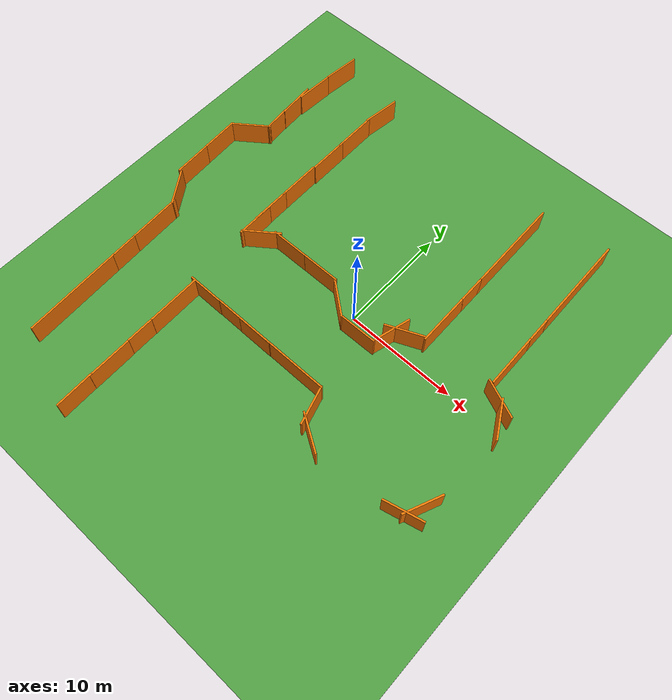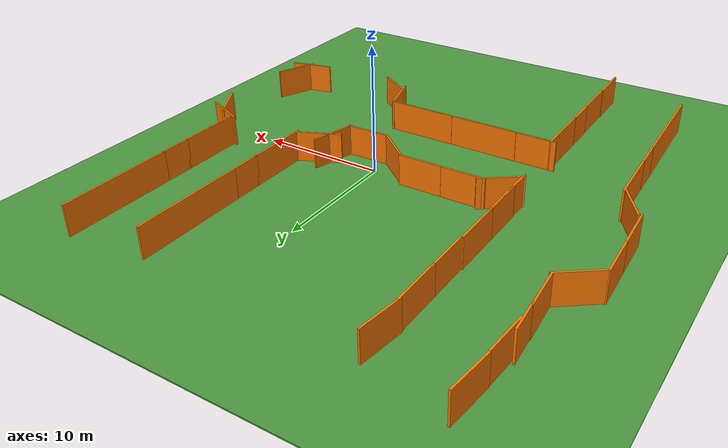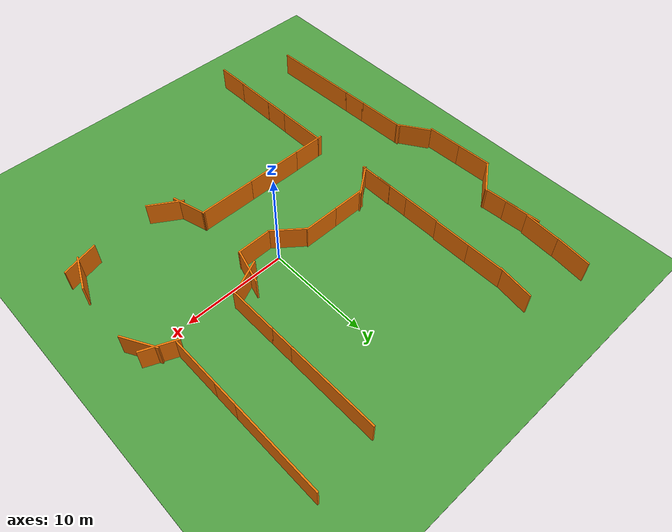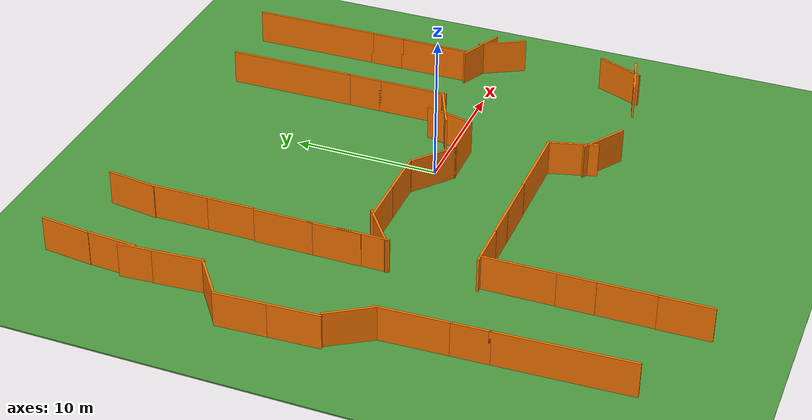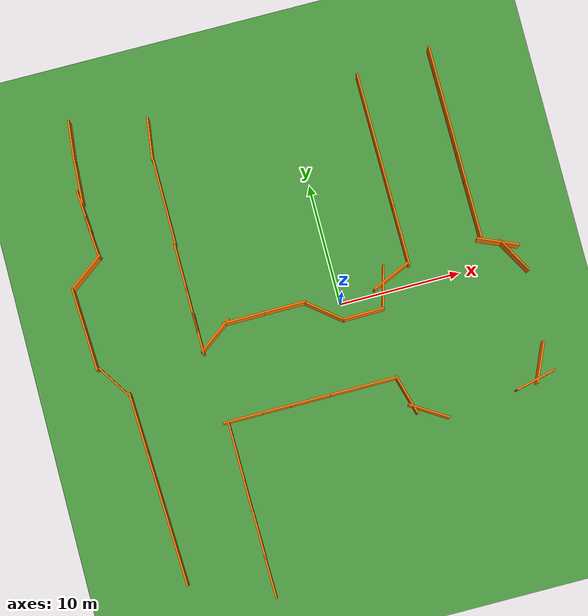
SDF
<sdf version="1.7">
 <world name="cimen_zemin_dunyasi">
  <model name="cimen_zemin">
   <static>1</static>
   <pose>-4.07306 2.53992 0 0 -0 0</pose>
   <link name="zemin_linki">
    <collision name="zemin_collision">
     <geometry><box><size>250 250 0.1</size></box></geometry>
     <surface><friction><ode><mu>1</mu><mu2>1</mu2></ode></friction></surface>
    </collision>
    <visual name="zemin_visual">
     <geometry><box><size>250 250 0.1</size></box></geometry>
     <material>
      <script><uri>file://media/materials/scripts/gazebo.material</uri><name>Gazebo/Grass</name></script>
     </material>
    </visual>
   </link>
  </model>
  <model name="barier3">
   <pose>8.34987 9.56962 0 0 0 -1.56341</pose>
   <link name="Wall_5">
    <collision name="Wall_5_Collision">
     <geometry><box><size>9 0.15 2.5</size></box></geometry>
     <pose>0 0 1.25 0 -0 0</pose>
    </collision>
    <visual name="Wall_5_Visual">
     <pose>0 0 1.25 0 -0 0</pose>
     <geometry><box><size>9 0.15 2.5</size></box></geometry>
     <material>
      <script><uri>file://media/materials/scripts/gazebo.material</uri><name>Gazebo/Grey</name></script>
      <ambient>0.996078 0.47451 0.0196078 1</ambient>
     </material>
     <meta><layer>0</layer></meta>
    </visual>
    <pose>-3.6 -2.29057 0 0 -0 0</pose>
   </link>
   <link name="Wall_7">
    <collision name="Wall_7_Collision">
     <geometry><box><size>2.5 0.15 2.5</size></box></geometry>
     <pose>0 0 1.25 0 -0 0</pose>
    </collision>
    <visual name="Wall_7_Visual">
     <pose>0 0 1.25 0 -0 0</pose>
     <geometry><box><size>2.5 0.15 2.5</size></box></geometry>
     <material>
      <script><uri>file://media/materials/scripts/gazebo.material</uri><name>Gazebo/Grey</name></script>
      <ambient>0.996078 0.47451 0.0196078 1</ambient>
     </material>
     <meta><layer>0</layer></meta>
    </visual>
    <pose>2 -2.29057 0 0 -0 0</pose>
   </link>
   <link name="Wall_9">
    <collision name="Wall_9_Collision">
     <geometry><box><size>5 0.15 2.5</size></box></geometry>
     <pose>0 0 1.25 0 -0 0</pose>
    </collision>
    <visual name="Wall_9_Visual">
     <pose>0 0 1.25 0 -0 0</pose>
     <geometry><box><size>5 0.15 2.5</size></box></geometry>
     <material>
      <script><uri>file://media/materials/scripts/gazebo.material</uri><name>Gazebo/Grey</name></script>
      <ambient>0.996078 0.47451 0.0196078 1</ambient>
     </material>
     <meta><layer>0</layer></meta>
    </visual>
    <pose>5.6 -2.29057 0 0 -0 0</pose>
   </link>
   <static>1</static>
  </model>
  <model name="barier3_clone_clone_clone_clone_0_clone_clone_clone_clone_0_clone">
   <link name="Wall_5">
    <pose>-0.876122 -2.31251 -0.000674 0 -0 0</pose>
    <inertial>
     <inertia><ixx>0</ixx><ixy>0</ixy><ixz>0</ixz><iyy>0</iyy><iyz>0</iyz><izz>0</izz></inertia>
     <mass>0</mass>
    </inertial>
    <visual name="Wall_5_Visual">
     <pose>0 0 1.25 0 -0 0</pose>
     <geometry><box><size>3.28339 0.15 2.5</size></box></geometry>
     <material>
      <script><uri>file://media/materials/scripts/gazebo.material</uri><name>Gazebo/Grey</name></script>
      <ambient>0.996078 0.47451 0.0196078 1</ambient>
      <shader type="pixel"/>
     </material>
     <meta><layer>0</layer></meta>
    </visual>
    <collision name="Wall_5_Collision">
     <pose>0 0 1.25 0 -0 0</pose>
     <geometry><box><size>3.28339 0.15 2.5</size></box></geometry>
     <surface>
      <friction>
       <ode><mu>1</mu><mu2>1</mu2><fdir1>0 0 0</fdir1><slip1>0</slip1><slip2>0</slip2></ode>
       <torsional>
        <coefficient>1</coefficient>
        <patch_radius>0</patch_radius>
        <surface_radius>0</surface_radius>
        <use_patch_radius>1</use_patch_radius>
        <ode><slip>0</slip></ode>
       </torsional>
      </friction>
      <bounce><restitution_coefficient>0</restitution_coefficient><threshold>1e+06</threshold></bounce>
      <contact>
       <collide_without_contact>0</collide_without_contact>
       <collide_without_contact_bitmask>1</collide_without_contact_bitmask>
       <collide_bitmask>1</collide_bitmask>
       <ode>
        <soft_cfm>0</soft_cfm>
        <soft_erp>0.2</soft_erp>
        <kp>1e+13</kp>
        <kd>1</kd>
        <max_vel>0.01</max_vel>
        <min_depth>0</min_depth>
       </ode>
       <bullet>
        <split_impulse>1</split_impulse>
        <split_impulse_penetration_threshold>-0.01</split_impulse_penetration_threshold>
        <soft_cfm>0</soft_cfm>
        <soft_erp>0.2</soft_erp>
        <kp>1e+13</kp>
        <kd>1</kd>
       </bullet>
      </contact>
     </surface>
    </collision>
   </link>
   <link name="Wall_9">
    <pose>3.5903 -2.29153 0.020971 0 -0 0</pose>
    <inertial>
     <inertia><ixx>0</ixx><ixy>0</ixy><ixz>0</ixz><iyy>0</iyy><iyz>0</iyz><izz>0</izz></inertia>
     <mass>0</mass>
    </inertial>
    <visual name="Wall_9_Visual">
     <pose>0 0 1.25 0 -0 0</pose>
     <geometry><box><size>5.65108 0.15 2.5</size></box></geometry>
     <material>
      <script><uri>file://media/materials/scripts/gazebo.material</uri><name>Gazebo/Grey</name></script>
      <ambient>0.996078 0.47451 0.0196078 1</ambient>
      <shader type="pixel"/>
     </material>
     <meta><layer>0</layer></meta>
    </visual>
    <collision name="Wall_9_Collision">
     <pose>0 0 1.25 0 -0 0</pose>
     <geometry><box><size>5.65108 0.15 2.5</size></box></geometry>
     <surface>
      <friction>
       <ode><mu>1</mu><mu2>1</mu2><fdir1>0 0 0</fdir1><slip1>0</slip1><slip2>0</slip2></ode>
       <torsional>
        <coefficient>1</coefficient>
        <patch_radius>0</patch_radius>
        <surface_radius>0</surface_radius>
        <use_patch_radius>1</use_patch_radius>
        <ode><slip>0</slip></ode>
       </torsional>
      </friction>
      <bounce><restitution_coefficient>0</restitution_coefficient><threshold>1e+06</threshold></bounce>
      <contact>
       <collide_without_contact>0</collide_without_contact>
       <collide_without_contact_bitmask>1</collide_without_contact_bitmask>
       <collide_bitmask>1</collide_bitmask>
       <ode>
        <soft_cfm>0</soft_cfm>
        <soft_erp>0.2</soft_erp>
        <kp>1e+13</kp>
        <kd>1</kd>
        <max_vel>0.01</max_vel>
        <min_depth>0</min_depth>
       </ode>
       <bullet>
        <split_impulse>1</split_impulse>
        <split_impulse_penetration_threshold>-0.01</split_impulse_penetration_threshold>
        <soft_cfm>0</soft_cfm>
        <soft_erp>0.2</soft_erp>
        <kp>1e+13</kp>
        <kd>1</kd>
       </bullet>
      </contact>
     </surface>
    </collision>
   </link>
   <static>1</static>
   <pose>-3.50952 -4.75677 0 0 -0 0</pose>
  </model>
  <model name="barier3_clone_clone_clone_clone_0_clone_clone_clone_clone_0_clone_0">
   <link name="Wall_5">
    <pose>-0.876122 -2.31251 -0.000674 0 -0 0</pose>
    <inertial>
     <inertia><ixx>0</ixx><ixy>0</ixy><ixz>0</ixz><iyy>0</iyy><iyz>0</iyz><izz>0</izz></inertia>
     <mass>0</mass>
    </inertial>
    <visual name="Wall_5_Visual">
     <pose>0 0 1.25 0 -0 0</pose>
     <geometry><box><size>3.28339 0.15 2.5</size></box></geometry>
     <material>
      <script><uri>file://media/materials/scripts/gazebo.material</uri><name>Gazebo/Grey</name></script>
      <ambient>0.996078 0.47451 0.0196078 1</ambient>
      <shader type="pixel"/>
     </material>
     <meta><layer>0</layer></meta>
    </visual>
    <collision name="Wall_5_Collision">
     <pose>0 0 1.25 0 -0 0</pose>
     <geometry><box><size>3.28339 0.15 2.5</size></box></geometry>
     <surface>
      <friction>
       <ode><mu>1</mu><mu2>1</mu2><fdir1>0 0 0</fdir1><slip1>0</slip1><slip2>0</slip2></ode>
       <torsional>
        <coefficient>1</coefficient>
        <patch_radius>0</patch_radius>
        <surface_radius>0</surface_radius>
        <use_patch_radius>1</use_patch_radius>
        <ode><slip>0</slip></ode>
       </torsional>
      </friction>
      <bounce><restitution_coefficient>0</restitution_coefficient><threshold>1e+06</threshold></bounce>
      <contact>
       <collide_without_contact>0</collide_without_contact>
       <collide_without_contact_bitmask>1</collide_without_contact_bitmask>
       <collide_bitmask>1</collide_bitmask>
       <ode>
        <soft_cfm>0</soft_cfm>
        <soft_erp>0.2</soft_erp>
        <kp>1e+13</kp>
        <kd>1</kd>
        <max_vel>0.01</max_vel>
        <min_depth>0</min_depth>
       </ode>
       <bullet>
        <split_impulse>1</split_impulse>
        <split_impulse_penetration_threshold>-0.01</split_impulse_penetration_threshold>
        <soft_cfm>0</soft_cfm>
        <soft_erp>0.2</soft_erp>
        <kp>1e+13</kp>
        <kd>1</kd>
       </bullet>
      </contact>
     </surface>
    </collision>
   </link>
   <link name="Wall_9">
    <pose>3.5903 -2.29153 0.020971 0 -0 0</pose>
    <inertial>
     <inertia><ixx>0</ixx><ixy>0</ixy><ixz>0</ixz><iyy>0</iyy><iyz>0</iyz><izz>0</izz></inertia>
     <mass>0</mass>
    </inertial>
    <visual name="Wall_9_Visual">
     <pose>0 0 1.25 0 -0 0</pose>
     <geometry><box><size>5.65108 0.15 2.5</size></box></geometry>
     <material>
      <script><uri>file://media/materials/scripts/gazebo.material</uri><name>Gazebo/Grey</name></script>
      <ambient>0.996078 0.47451 0.0196078 1</ambient>
      <shader type="pixel"/>
     </material>
     <meta><layer>0</layer></meta>
    </visual>
    <collision name="Wall_9_Collision">
     <pose>0 0 1.25 0 -0 0</pose>
     <geometry><box><size>5.65108 0.15 2.5</size></box></geometry>
     <surface>
      <friction>
       <ode><mu>1</mu><mu2>1</mu2><fdir1>0 0 0</fdir1><slip1>0</slip1><slip2>0</slip2></ode>
       <torsional>
        <coefficient>1</coefficient>
        <patch_radius>0</patch_radius>
        <surface_radius>0</surface_radius>
        <use_patch_radius>1</use_patch_radius>
        <ode><slip>0</slip></ode>
       </torsional>
      </friction>
      <bounce><restitution_coefficient>0</restitution_coefficient><threshold>1e+06</threshold></bounce>
      <contact>
       <collide_without_contact>0</collide_without_contact>
       <collide_without_contact_bitmask>1</collide_without_contact_bitmask>
       <collide_bitmask>1</collide_bitmask>
       <ode>
        <soft_cfm>0</soft_cfm>
        <soft_erp>0.2</soft_erp>
        <kp>1e+13</kp>
        <kd>1</kd>
        <max_vel>0.01</max_vel>
        <min_depth>0</min_depth>
       </ode>
       <bullet>
        <split_impulse>1</split_impulse>
        <split_impulse_penetration_threshold>-0.01</split_impulse_penetration_threshold>
        <soft_cfm>0</soft_cfm>
        <soft_erp>0.2</soft_erp>
        <kp>1e+13</kp>
        <kd>1</kd>
       </bullet>
      </contact>
     </surface>
    </collision>
   </link>
   <static>1</static>
   <pose>-9.11126 -4.76807 0 0 -0 0</pose>
  </model>
  <model name="barrier2_clone_0_clone_clone_clone">
   <pose>-12.102 18.3665 0 0 -0 1.43662</pose>
   <link name="Wall_3">
    <collision name="Wall_3_Collision">
     <geometry><box><size>3.5 0.15 2.5</size></box></geometry>
     <pose>0 0 1.25 0 -0 0</pose>
    </collision>
    <visual name="Wall_3_Visual">
     <pose>0 0 1.25 0 -0 0</pose>
     <geometry><box><size>3.5 0.15 2.5</size></box></geometry>
     <material>
      <script><uri>file://media/materials/scripts/gazebo.material</uri><name>Gazebo/Grey</name></script>
      <ambient>0.996078 0.47451 0.0196078 1</ambient>
     </material>
     <meta><layer>0</layer></meta>
    </visual>
    <pose>-1.55327 -0.720218 0 0 -0 0</pose>
   </link>
   <static>1</static>
  </model>
  <model name="barrier2_clone_clone_clone_clone">
   <pose>-18.357 19.7461 0 0 -0 1.46324</pose>
   <link name="Wall_3">
    <collision name="Wall_3_Collision">
     <geometry><box><size>3.5 0.15 2.5</size></box></geometry>
     <pose>0 0 1.25 0 -0 0</pose>
    </collision>
    <visual name="Wall_3_Visual">
     <pose>0 0 1.25 0 -0 0</pose>
     <geometry><box><size>3.5 0.15 2.5</size></box></geometry>
     <material>
      <script><uri>file://media/materials/scripts/gazebo.material</uri><name>Gazebo/Grey</name></script>
      <ambient>0.996078 0.47451 0.0196078 1</ambient>
     </material>
     <meta><layer>0</layer></meta>
    </visual>
    <pose>-1.55327 -0.720218 0 0 -0 0</pose>
   </link>
   <static>1</static>
  </model>
  <model name="barrier2_clone_clone_clone_clone_clone">
   <pose>-18.687 16.3208 0 0 -0 1.50893</pose>
   <link name="Wall_3">
    <collision name="Wall_3_Collision">
     <geometry><box><size>3.5 0.15 2.5</size></box></geometry>
     <pose>0 0 1.25 0 -0 0</pose>
    </collision>
    <visual name="Wall_3_Visual">
     <pose>0 0 1.25 0 -0 0</pose>
     <geometry><box><size>3.5 0.15 2.5</size></box></geometry>
     <material>
      <script><uri>file://media/materials/scripts/gazebo.material</uri><name>Gazebo/Grey</name></script>
      <ambient>0.996078 0.47451 0.0196078 1</ambient>
     </material>
     <meta><layer>0</layer></meta>
    </visual>
    <pose>-1.55327 -0.720218 0 0 -0 0</pose>
   </link>
   <static>1</static>
  </model>
  <model name="barier3_0_clone">
   <pose>-20.261 -10.9816 0 0 -0 1.61362</pose>
   <link name="Wall_5">
    <collision name="Wall_5_Collision">
     <geometry><box><size>9 0.15 2.5</size></box></geometry>
     <pose>0 0 1.25 0 -0 0</pose>
    </collision>
    <visual name="Wall_5_Visual">
     <pose>0 0 1.25 0 -0 0</pose>
     <geometry><box><size>9 0.15 2.5</size></box></geometry>
     <material>
      <script><uri>file://media/materials/scripts/gazebo.material</uri><name>Gazebo/Grey</name></script>
      <ambient>0.996078 0.47451 0.0196078 1</ambient>
     </material>
     <meta><layer>0</layer></meta>
    </visual>
    <pose>-3.6 -2.29057 0 0 -0 0</pose>
   </link>
   <link name="Wall_7">
    <collision name="Wall_7_Collision">
     <geometry><box><size>2.5 0.15 2.5</size></box></geometry>
     <pose>0 0 1.25 0 -0 0</pose>
    </collision>
    <visual name="Wall_7_Visual">
     <pose>0 0 1.25 0 -0 0</pose>
     <geometry><box><size>2.5 0.15 2.5</size></box></geometry>
     <material>
      <script><uri>file://media/materials/scripts/gazebo.material</uri><name>Gazebo/Grey</name></script>
      <ambient>0.996078 0.47451 0.0196078 1</ambient>
     </material>
     <meta><layer>0</layer></meta>
    </visual>
    <pose>2 -2.29057 0 0 -0 0</pose>
   </link>
   <link name="Wall_9">
    <collision name="Wall_9_Collision">
     <geometry><box><size>5 0.15 2.5</size></box></geometry>
     <pose>0 0 1.25 0 -0 0</pose>
    </collision>
    <visual name="Wall_9_Visual">
     <pose>0 0 1.25 0 -0 0</pose>
     <geometry><box><size>5 0.15 2.5</size></box></geometry>
     <material>
      <script><uri>file://media/materials/scripts/gazebo.material</uri><name>Gazebo/Grey</name></script>
      <ambient>0.996078 0.47451 0.0196078 1</ambient>
     </material>
     <meta><layer>0</layer></meta>
    </visual>
    <pose>5.6 -2.29057 0 0 -0 0</pose>
   </link>
   <static>1</static>
  </model>
  <model name="barier3_clone_clone_clone_clone_0_clone_clone_0_clone">
   <link name="Wall_5">
    <pose>-1.14926 -2.31114 0 0 -0 0</pose>
    <inertial>
     <inertia><ixx>0</ixx><ixy>0</ixy><ixz>0</ixz><iyy>0</iyy><iyz>0</iyz><izz>0</izz></inertia>
     <mass>0</mass>
    </inertial>
    <visual name="Wall_5_Visual">
     <pose>0 0 1.25 0 -0 0</pose>
     <geometry><box><size>4.04839 0.15 2.5</size></box></geometry>
     <material>
      <script><uri>file://media/materials/scripts/gazebo.material</uri><name>Gazebo/Grey</name></script>
      <ambient>0.996078 0.47451 0.0196078 1</ambient>
      <shader type="pixel"/>
     </material>
     <meta><layer>0</layer></meta>
    </visual>
    <collision name="Wall_5_Collision">
     <pose>0 0 1.25 0 -0 0</pose>
     <geometry><box><size>4.04839 0.15 2.5</size></box></geometry>
     <surface>
      <friction>
       <ode><mu>1</mu><mu2>1</mu2><fdir1>0 0 0</fdir1><slip1>0</slip1><slip2>0</slip2></ode>
       <torsional>
        <coefficient>1</coefficient>
        <patch_radius>0</patch_radius>
        <surface_radius>0</surface_radius>
        <use_patch_radius>1</use_patch_radius>
        <ode><slip>0</slip></ode>
       </torsional>
      </friction>
      <bounce><restitution_coefficient>0</restitution_coefficient><threshold>1e+06</threshold></bounce>
      <contact>
       <collide_without_contact>0</collide_without_contact>
       <collide_without_contact_bitmask>1</collide_without_contact_bitmask>
       <collide_bitmask>1</collide_bitmask>
       <ode>
        <soft_cfm>0</soft_cfm>
        <soft_erp>0.2</soft_erp>
        <kp>1e+13</kp>
        <kd>1</kd>
        <max_vel>0.01</max_vel>
        <min_depth>0</min_depth>
       </ode>
       <bullet>
        <split_impulse>1</split_impulse>
        <split_impulse_penetration_threshold>-0.01</split_impulse_penetration_threshold>
        <soft_cfm>0</soft_cfm>
        <soft_erp>0.2</soft_erp>
        <kp>1e+13</kp>
        <kd>1</kd>
       </bullet>
      </contact>
     </surface>
    </collision>
   </link>
   <link name="Wall_9">
    <pose>2.34493 -2.31065 0 0 -0 0</pose>
    <inertial>
     <inertia><ixx>0</ixx><ixy>0</ixy><ixz>0</ixz><iyy>0</iyy><iyz>0</iyz><izz>0</izz></inertia>
     <mass>0</mass>
    </inertial>
    <visual name="Wall_9_Visual">
     <pose>0 0 1.25 0 -0 0</pose>
     <geometry><box><size>3.66586 0.15 2.5</size></box></geometry>
     <material>
      <script><uri>file://media/materials/scripts/gazebo.material</uri><name>Gazebo/Grey</name></script>
      <ambient>0.996078 0.47451 0.0196078 1</ambient>
      <shader type="pixel"/>
     </material>
     <meta><layer>0</layer></meta>
    </visual>
    <collision name="Wall_9_Collision">
     <pose>0 0 1.25 0 -0 0</pose>
     <geometry><box><size>3.66586 0.15 2.5</size></box></geometry>
     <surface>
      <friction>
       <ode><mu>1</mu><mu2>1</mu2><fdir1>0 0 0</fdir1><slip1>0</slip1><slip2>0</slip2></ode>
       <torsional>
        <coefficient>1</coefficient>
        <patch_radius>0</patch_radius>
        <surface_radius>0</surface_radius>
        <use_patch_radius>1</use_patch_radius>
        <ode><slip>0</slip></ode>
       </torsional>
      </friction>
      <bounce><restitution_coefficient>0</restitution_coefficient><threshold>1e+06</threshold></bounce>
      <contact>
       <collide_without_contact>0</collide_without_contact>
       <collide_without_contact_bitmask>1</collide_without_contact_bitmask>
       <collide_bitmask>1</collide_bitmask>
       <ode>
        <soft_cfm>0</soft_cfm>
        <soft_erp>0.2</soft_erp>
        <kp>1e+13</kp>
        <kd>1</kd>
        <max_vel>0.01</max_vel>
        <min_depth>0</min_depth>
       </ode>
       <bullet>
        <split_impulse>1</split_impulse>
        <split_impulse_penetration_threshold>-0.01</split_impulse_penetration_threshold>
        <soft_cfm>0</soft_cfm>
        <soft_erp>0.2</soft_erp>
        <kp>1e+13</kp>
        <kd>1</kd>
       </bullet>
      </contact>
     </surface>
    </collision>
   </link>
   <static>1</static>
   <pose>-9.43805 12.101 0 0 0 -1.56598</pose>
  </model>
  <model name="barier3_clone_clone_clone_clone_0_clone_clone_0_clone_clone">
   <link name="Wall_5">
    <pose>-1.14926 -2.31114 0 0 -0 0</pose>
    <inertial>
     <inertia><ixx>0</ixx><ixy>0</ixy><ixz>0</ixz><iyy>0</iyy><iyz>0</iyz><izz>0</izz></inertia>
     <mass>0</mass>
    </inertial>
    <visual name="Wall_5_Visual">
     <pose>0 0 1.25 0 -0 0</pose>
     <geometry><box><size>4.04839 0.15 2.5</size></box></geometry>
     <material>
      <script><uri>file://media/materials/scripts/gazebo.material</uri><name>Gazebo/Grey</name></script>
      <ambient>0.996078 0.47451 0.0196078 1</ambient>
      <shader type="pixel"/>
     </material>
     <meta><layer>0</layer></meta>
    </visual>
    <collision name="Wall_5_Collision">
     <pose>0 0 1.25 0 -0 0</pose>
     <geometry><box><size>4.04839 0.15 2.5</size></box></geometry>
     <surface>
      <friction>
       <ode><mu>1</mu><mu2>1</mu2><fdir1>0 0 0</fdir1><slip1>0</slip1><slip2>0</slip2></ode>
       <torsional>
        <coefficient>1</coefficient>
        <patch_radius>0</patch_radius>
        <surface_radius>0</surface_radius>
        <use_patch_radius>1</use_patch_radius>
        <ode><slip>0</slip></ode>
       </torsional>
      </friction>
      <bounce><restitution_coefficient>0</restitution_coefficient><threshold>1e+06</threshold></bounce>
      <contact>
       <collide_without_contact>0</collide_without_contact>
       <collide_without_contact_bitmask>1</collide_without_contact_bitmask>
       <collide_bitmask>1</collide_bitmask>
       <ode>
        <soft_cfm>0</soft_cfm>
        <soft_erp>0.2</soft_erp>
        <kp>1e+13</kp>
        <kd>1</kd>
        <max_vel>0.01</max_vel>
        <min_depth>0</min_depth>
       </ode>
       <bullet>
        <split_impulse>1</split_impulse>
        <split_impulse_penetration_threshold>-0.01</split_impulse_penetration_threshold>
        <soft_cfm>0</soft_cfm>
        <soft_erp>0.2</soft_erp>
        <kp>1e+13</kp>
        <kd>1</kd>
       </bullet>
      </contact>
     </surface>
    </collision>
   </link>
   <link name="Wall_9">
    <pose>2.34493 -2.31065 0 0 -0 0</pose>
    <inertial>
     <inertia><ixx>0</ixx><ixy>0</ixy><ixz>0</ixz><iyy>0</iyy><iyz>0</iyz><izz>0</izz></inertia>
     <mass>0</mass>
    </inertial>
    <visual name="Wall_9_Visual">
     <pose>0 0 1.25 0 -0 0</pose>
     <geometry><box><size>3.66586 0.15 2.5</size></box></geometry>
     <material>
      <script><uri>file://media/materials/scripts/gazebo.material</uri><name>Gazebo/Grey</name></script>
      <ambient>0.996078 0.47451 0.0196078 1</ambient>
      <shader type="pixel"/>
     </material>
     <meta><layer>0</layer></meta>
    </visual>
    <collision name="Wall_9_Collision">
     <pose>0 0 1.25 0 -0 0</pose>
     <geometry><box><size>3.66586 0.15 2.5</size></box></geometry>
     <surface>
      <friction>
       <ode><mu>1</mu><mu2>1</mu2><fdir1>0 0 0</fdir1><slip1>0</slip1><slip2>0</slip2></ode>
       <torsional>
        <coefficient>1</coefficient>
        <patch_radius>0</patch_radius>
        <surface_radius>0</surface_radius>
        <use_patch_radius>1</use_patch_radius>
        <ode><slip>0</slip></ode>
       </torsional>
      </friction>
      <bounce><restitution_coefficient>0</restitution_coefficient><threshold>1e+06</threshold></bounce>
      <contact>
       <collide_without_contact>0</collide_without_contact>
       <collide_without_contact_bitmask>1</collide_without_contact_bitmask>
       <collide_bitmask>1</collide_bitmask>
       <ode>
        <soft_cfm>0</soft_cfm>
        <soft_erp>0.2</soft_erp>
        <kp>1e+13</kp>
        <kd>1</kd>
        <max_vel>0.01</max_vel>
        <min_depth>0</min_depth>
       </ode>
       <bullet>
        <split_impulse>1</split_impulse>
        <split_impulse_penetration_threshold>-0.01</split_impulse_penetration_threshold>
        <soft_cfm>0</soft_cfm>
        <soft_erp>0.2</soft_erp>
        <kp>1e+13</kp>
        <kd>1</kd>
       </bullet>
      </contact>
     </surface>
    </collision>
   </link>
   <static>1</static>
   <pose>-9.48925 4.74309 0 0 0 -1.56598</pose>
  </model>
  <model name="barier3_clone_0">
   <pose>14.5457 10.2617 0 0 0 -1.56341</pose>
   <link name="Wall_5">
    <collision name="Wall_5_Collision">
     <geometry><box><size>9 0.15 2.5</size></box></geometry>
     <pose>0 0 1.25 0 -0 0</pose>
    </collision>
    <visual name="Wall_5_Visual">
     <pose>0 0 1.25 0 -0 0</pose>
     <geometry><box><size>9 0.15 2.5</size></box></geometry>
     <material>
      <script><uri>file://media/materials/scripts/gazebo.material</uri><name>Gazebo/Grey</name></script>
      <ambient>0.996078 0.47451 0.0196078 1</ambient>
     </material>
     <meta><layer>0</layer></meta>
    </visual>
    <pose>-3.6 -2.29057 0 0 -0 0</pose>
   </link>
   <link name="Wall_7">
    <collision name="Wall_7_Collision">
     <geometry><box><size>2.5 0.15 2.5</size></box></geometry>
     <pose>0 0 1.25 0 -0 0</pose>
    </collision>
    <visual name="Wall_7_Visual">
     <pose>0 0 1.25 0 -0 0</pose>
     <geometry><box><size>2.5 0.15 2.5</size></box></geometry>
     <material>
      <script><uri>file://media/materials/scripts/gazebo.material</uri><name>Gazebo/Grey</name></script>
      <ambient>0.996078 0.47451 0.0196078 1</ambient>
     </material>
     <meta><layer>0</layer></meta>
    </visual>
    <pose>2 -2.29057 0 0 -0 0</pose>
   </link>
   <link name="Wall_9">
    <collision name="Wall_9_Collision">
     <geometry><box><size>5 0.15 2.5</size></box></geometry>
     <pose>0 0 1.25 0 -0 0</pose>
    </collision>
    <visual name="Wall_9_Visual">
     <pose>0 0 1.25 0 -0 0</pose>
     <geometry><box><size>5 0.15 2.5</size></box></geometry>
     <material>
      <script><uri>file://media/materials/scripts/gazebo.material</uri><name>Gazebo/Grey</name></script>
      <ambient>0.996078 0.47451 0.0196078 1</ambient>
     </material>
     <meta><layer>0</layer></meta>
    </visual>
    <pose>5.6 -2.29057 0 0 -0 0</pose>
   </link>
   <static>1</static>
  </model>
  <model name="barrier2_clone_clone_0">
   <pose>13.1136 1.14409 0 0 -0 2.08676</pose>
   <link name="Wall_3">
    <collision name="Wall_3_Collision">
     <geometry><box><size>3.5 0.15 2.5</size></box></geometry>
     <pose>0 0 1.25 0 -0 0</pose>
    </collision>
    <visual name="Wall_3_Visual">
     <pose>0 0 1.25 0 -0 0</pose>
     <geometry><box><size>3.5 0.15 2.5</size></box></geometry>
     <material>
      <script><uri>file://media/materials/scripts/gazebo.material</uri><name>Gazebo/Grey</name></script>
      <ambient>0.996078 0.47451 0.0196078 1</ambient>
     </material>
     <meta><layer>0</layer></meta>
    </visual>
    <pose>-1.55327 -0.720218 0 0 -0 0</pose>
   </link>
   <static>1</static>
  </model>
  <model name="barrier2_clone_clone_0_clone">
   <pose>11.8327 1.44518 0 0 -0 2.73706</pose>
   <link name="Wall_3">
    <collision name="Wall_3_Collision">
     <geometry><box><size>3.5 0.15 2.5</size></box></geometry>
     <pose>0 0 1.25 0 -0 0</pose>
    </collision>
    <visual name="Wall_3_Visual">
     <pose>0 0 1.25 0 -0 0</pose>
     <geometry><box><size>3.5 0.15 2.5</size></box></geometry>
     <material>
      <script><uri>file://media/materials/scripts/gazebo.material</uri><name>Gazebo/Grey</name></script>
      <ambient>0.996078 0.47451 0.0196078 1</ambient>
     </material>
     <meta><layer>0</layer></meta>
    </visual>
    <pose>-1.55327 -0.720218 0 0 -0 0</pose>
   </link>
   <static>1</static>
  </model>
  <model name="barrier2_clone_clone_0_clone_0">
   <pose>3.32046 -0.310571 0 0 0 -2.72327</pose>
   <link name="Wall_3">
    <collision name="Wall_3_Collision">
     <geometry><box><size>3.5 0.15 2.5</size></box></geometry>
     <pose>0 0 1.25 0 -0 0</pose>
    </collision>
    <visual name="Wall_3_Visual">
     <pose>0 0 1.25 0 -0 0</pose>
     <geometry><box><size>3.5 0.15 2.5</size></box></geometry>
     <material>
      <script><uri>file://media/materials/scripts/gazebo.material</uri><name>Gazebo/Grey</name></script>
      <ambient>0.996078 0.47451 0.0196078 1</ambient>
     </material>
     <meta><layer>0</layer></meta>
    </visual>
    <pose>-1.55327 -0.720218 0 0 -0 0</pose>
   </link>
   <static>1</static>
  </model>
  <model name="barrier2_clone_clone_0_clone_0_clone">
   <pose>3.93477 -1.35196 0 0 0 -1.83607</pose>
   <link name="Wall_3">
    <collision name="Wall_3_Collision">
     <geometry><box><size>3.5 0.15 2.5</size></box></geometry>
     <pose>0 0 1.25 0 -0 0</pose>
    </collision>
    <visual name="Wall_3_Visual">
     <pose>0 0 1.25 0 -0 0</pose>
     <geometry><box><size>3.5 0.15 2.5</size></box></geometry>
     <material>
      <script><uri>file://media/materials/scripts/gazebo.material</uri><name>Gazebo/Grey</name></script>
      <ambient>0.996078 0.47451 0.0196078 1</ambient>
     </material>
     <meta><layer>0</layer></meta>
    </visual>
    <pose>-1.55327 -0.720218 0 0 -0 0</pose>
   </link>
   <static>1</static>
  </model>
  <model name="barrier2_clone_clone_0_clone_clone">
   <pose>-0.007255 -2.146 0 0 0 -3.12669</pose>
   <link name="Wall_3">
    <collision name="Wall_3_Collision">
     <geometry><box><size>3.5 0.15 2.5</size></box></geometry>
     <pose>0 0 1.25 0 -0 0</pose>
    </collision>
    <visual name="Wall_3_Visual">
     <pose>0 0 1.25 0 -0 0</pose>
     <geometry><box><size>3.5 0.15 2.5</size></box></geometry>
     <material>
      <script><uri>file://media/materials/scripts/gazebo.material</uri><name>Gazebo/Grey</name></script>
      <ambient>0.996078 0.47451 0.0196078 1</ambient>
     </material>
     <meta><layer>0</layer></meta>
    </visual>
    <pose>-1.55327 -0.720218 0 0 -0 0</pose>
   </link>
   <static>1</static>
  </model>
  <model name="barrier2_clone_clone_0_clone_clone_clone">
   <pose>-3.1025 0.012439 0 0 -0 2.46427</pose>
   <link name="Wall_3">
    <collision name="Wall_3_Collision">
     <geometry><box><size>3.5 0.15 2.5</size></box></geometry>
     <pose>0 0 1.25 0 -0 0</pose>
    </collision>
    <visual name="Wall_3_Visual">
     <pose>0 0 1.25 0 -0 0</pose>
     <geometry><box><size>3.5 0.15 2.5</size></box></geometry>
     <material>
      <script><uri>file://media/materials/scripts/gazebo.material</uri><name>Gazebo/Grey</name></script>
      <ambient>0.996078 0.47451 0.0196078 1</ambient>
     </material>
     <meta><layer>0</layer></meta>
    </visual>
    <pose>-1.55327 -0.720218 0 0 -0 0</pose>
   </link>
   <static>1</static>
  </model>
  <model name="barrier2_clone_clone_0_clone_clone_clone_clone">
   <pose>-5.98223 -0.002861 0 0 0 -3.13631</pose>
   <link name="Wall_3">
    <collision name="Wall_3_Collision">
     <geometry><box><size>3.5 0.15 2.5</size></box></geometry>
     <pose>0 0 1.25 0 -0 0</pose>
    </collision>
    <visual name="Wall_3_Visual">
     <pose>0 0 1.25 0 -0 0</pose>
     <geometry><box><size>3.5 0.15 2.5</size></box></geometry>
     <material>
      <script><uri>file://media/materials/scripts/gazebo.material</uri><name>Gazebo/Grey</name></script>
      <ambient>0.996078 0.47451 0.0196078 1</ambient>
     </material>
     <meta><layer>0</layer></meta>
    </visual>
    <pose>-1.55327 -0.720218 0 0 -0 0</pose>
   </link>
   <static>1</static>
  </model>
  <model name="barrier2_clone_clone_0_clone_clone_clone_clone_clone">
   <pose>-9.47703 -0.025629 0 0 0 -3.13631</pose>
   <link name="Wall_3">
    <collision name="Wall_3_Collision">
     <geometry><box><size>3.5 0.15 2.5</size></box></geometry>
     <pose>0 0 1.25 0 -0 0</pose>
    </collision>
    <visual name="Wall_3_Visual">
     <pose>0 0 1.25 0 -0 0</pose>
     <geometry><box><size>3.5 0.15 2.5</size></box></geometry>
     <material>
      <script><uri>file://media/materials/scripts/gazebo.material</uri><name>Gazebo/Grey</name></script>
      <ambient>0.996078 0.47451 0.0196078 1</ambient>
     </material>
     <meta><layer>0</layer></meta>
    </visual>
    <pose>-1.55327 -0.720218 0 0 -0 0</pose>
   </link>
   <static>1</static>
  </model>
  <model name="barrier2_clone_clone_0_clone_clone_clone_clone_clone_clone">
   <pose>-11.2899 -1.59351 0 0 0 -2.49865</pose>
   <link name="Wall_3">
    <collision name="Wall_3_Collision">
     <geometry><box><size>3.5 0.15 2.5</size></box></geometry>
     <pose>0 0 1.25 0 -0 0</pose>
    </collision>
    <visual name="Wall_3_Visual">
     <pose>0 0 1.25 0 -0 0</pose>
     <geometry><box><size>3.5 0.15 2.5</size></box></geometry>
     <material>
      <script><uri>file://media/materials/scripts/gazebo.material</uri><name>Gazebo/Grey</name></script>
      <ambient>0.996078 0.47451 0.0196078 1</ambient>
     </material>
     <meta><layer>0</layer></meta>
    </visual>
    <pose>-1.55327 -0.720218 0 0 -0 0</pose>
   </link>
   <static>1</static>
  </model>
  <model name="barrier2_clone_clone_0_clone_clone_clone_clone_clone_clone_clone">
   <pose>-11.0179 -1.11958 0 0 0 -1.56879</pose>
   <link name="Wall_3">
    <collision name="Wall_3_Collision">
     <geometry><box><size>3.5 0.15 2.5</size></box></geometry>
     <pose>0 0 1.25 0 -0 0</pose>
    </collision>
    <visual name="Wall_3_Visual">
     <pose>0 0 1.25 0 -0 0</pose>
     <geometry><box><size>3.5 0.15 2.5</size></box></geometry>
     <material>
      <script><uri>file://media/materials/scripts/gazebo.material</uri><name>Gazebo/Grey</name></script>
      <ambient>0.996078 0.47451 0.0196078 1</ambient>
     </material>
     <meta><layer>0</layer></meta>
    </visual>
    <pose>-1.55327 -0.720218 0 0 -0 0</pose>
   </link>
   <static>1</static>
  </model>
  <model name="barrier2_clone_clone_0_clone_0_clone_0">
   <pose>4.3541 -9.91373 0 0 0 -1.29678</pose>
   <link name="Wall_3">
    <collision name="Wall_3_Collision">
     <geometry><box><size>3.5 0.15 2.5</size></box></geometry>
     <pose>0 0 1.25 0 -0 0</pose>
    </collision>
    <visual name="Wall_3_Visual">
     <pose>0 0 1.25 0 -0 0</pose>
     <geometry><box><size>3.5 0.15 2.5</size></box></geometry>
     <material>
      <script><uri>file://media/materials/scripts/gazebo.material</uri><name>Gazebo/Grey</name></script>
      <ambient>0.996078 0.47451 0.0196078 1</ambient>
     </material>
     <meta><layer>0</layer></meta>
    </visual>
    <pose>-1.55327 -0.720218 0 0 -0 0</pose>
   </link>
   <static>1</static>
  </model>
  <model name="barrier2_clone_clone_0_clone_0_clone_1">
   <pose>2.94706 -10.0983 0 0 -0 2.58034</pose>
   <link name="Wall_3">
    <collision name="Wall_3_Collision">
     <geometry><box><size>3.5 0.15 2.5</size></box></geometry>
     <pose>0 0 1.25 0 -0 0</pose>
    </collision>
    <visual name="Wall_3_Visual">
     <pose>0 0 1.25 0 -0 0</pose>
     <geometry><box><size>3.5 0.15 2.5</size></box></geometry>
     <material>
      <script><uri>file://media/materials/scripts/gazebo.material</uri><name>Gazebo/Grey</name></script>
      <ambient>0.996078 0.47451 0.0196078 1</ambient>
     </material>
     <meta><layer>0</layer></meta>
    </visual>
    <pose>-1.55327 -0.720218 0 0 -0 0</pose>
   </link>
   <static>1</static>
  </model>
  <model name="barrier2_clone_clone_0_clone_0_clone_0_clone">
   <pose>14.3688 -10.4879 0 0 0 -1.98062</pose>
   <link name="Wall_3">
    <collision name="Wall_3_Collision">
     <geometry><box><size>3.5 0.15 2.5</size></box></geometry>
     <pose>0 0 1.25 0 -0 0</pose>
    </collision>
    <visual name="Wall_3_Visual">
     <pose>0 0 1.25 0 -0 0</pose>
     <geometry><box><size>3.5 0.15 2.5</size></box></geometry>
     <material>
      <script><uri>file://media/materials/scripts/gazebo.material</uri><name>Gazebo/Grey</name></script>
      <ambient>0.996078 0.47451 0.0196078 1</ambient>
     </material>
     <meta><layer>0</layer></meta>
    </visual>
    <pose>-1.55327 -0.720218 0 0 -0 0</pose>
   </link>
   <static>1</static>
  </model>
  <model name="barrier2_clone_clone_0_clone_0_clone_0_clone_clone">
   <pose>12.2463 -11.1356 0 0 0 -2.90214</pose>
   <link name="Wall_3">
    <collision name="Wall_3_Collision">
     <geometry><box><size>3.5 0.15 2.5</size></box></geometry>
     <pose>0 0 1.25 0 -0 0</pose>
    </collision>
    <visual name="Wall_3_Visual">
     <pose>0 0 1.25 0 -0 0</pose>
     <geometry><box><size>3.5 0.15 2.5</size></box></geometry>
     <material>
      <script><uri>file://media/materials/scripts/gazebo.material</uri><name>Gazebo/Grey</name></script>
      <ambient>0.996078 0.47451 0.0196078 1</ambient>
     </material>
     <meta><layer>0</layer></meta>
    </visual>
    <pose>-1.55327 -0.720218 0 0 -0 0</pose>
   </link>
   <static>1</static>
  </model>
  <model name="barier3_clone_clone_clone_clone_0_clone_clone_clone_clone_0_clone_1_clone">
   <link name="Wall_5">
    <pose>-1.25417 -2.31114 0 0 -0 0</pose>
    <inertial>
     <inertia><ixx>0</ixx><ixy>0</ixy><ixz>0</ixz><iyy>0</iyy><iyz>0</iyz><izz>0</izz></inertia>
     <mass>0</mass>
    </inertial>
    <visual name="Wall_5_Visual">
     <pose>0 0 1.25 0 -0 0</pose>
     <geometry><box><size>4.04839 0.15 2.5</size></box></geometry>
     <material>
      <script><uri>file://media/materials/scripts/gazebo.material</uri><name>Gazebo/Grey</name></script>
      <ambient>0.996078 0.47451 0.0196078 1</ambient>
      <shader type="pixel"/>
     </material>
     <meta><layer>0</layer></meta>
    </visual>
    <collision name="Wall_5_Collision">
     <pose>0 0 1.25 0 -0 0</pose>
     <geometry><box><size>4.04839 0.15 2.5</size></box></geometry>
     <surface>
      <friction>
       <ode><mu>1</mu><mu2>1</mu2><fdir1>0 0 0</fdir1><slip1>0</slip1><slip2>0</slip2></ode>
       <torsional>
        <coefficient>1</coefficient>
        <patch_radius>0</patch_radius>
        <surface_radius>0</surface_radius>
        <use_patch_radius>1</use_patch_radius>
        <ode><slip>0</slip></ode>
       </torsional>
      </friction>
      <bounce><restitution_coefficient>0</restitution_coefficient><threshold>1e+06</threshold></bounce>
      <contact>
       <collide_without_contact>0</collide_without_contact>
       <collide_without_contact_bitmask>1</collide_without_contact_bitmask>
       <collide_bitmask>1</collide_bitmask>
       <ode>
        <soft_cfm>0</soft_cfm>
        <soft_erp>0.2</soft_erp>
        <kp>1e+13</kp>
        <kd>1</kd>
        <max_vel>0.01</max_vel>
        <min_depth>0</min_depth>
       </ode>
       <bullet>
        <split_impulse>1</split_impulse>
        <split_impulse_penetration_threshold>-0.01</split_impulse_penetration_threshold>
        <soft_cfm>0</soft_cfm>
        <soft_erp>0.2</soft_erp>
        <kp>1e+13</kp>
        <kd>1</kd>
       </bullet>
      </contact>
     </surface>
    </collision>
   </link>
   <link name="Wall_7">
    <pose>2 -2.29057 0 0 -0 0</pose>
    <visual name="Wall_7_Visual">
     <pose>0 0 1.25 0 -0 0</pose>
     <geometry><box><size>2.5 0.15 2.5</size></box></geometry>
     <material>
      <script><uri>file://media/materials/scripts/gazebo.material</uri><name>Gazebo/Grey</name></script>
      <ambient>0.996078 0.47451 0.0196078 1</ambient>
      <shader type="pixel"/>
     </material>
     <meta><layer>0</layer></meta>
    </visual>
    <collision name="Wall_7_Collision">
     <pose>0 0 1.25 0 -0 0</pose>
     <geometry><box><size>2.5 0.15 2.5</size></box></geometry>
     <surface>
      <friction>
       <ode><mu>1</mu><mu2>1</mu2><fdir1>0 0 0</fdir1><slip1>0</slip1><slip2>0</slip2></ode>
       <torsional>
        <coefficient>1</coefficient>
        <patch_radius>0</patch_radius>
        <surface_radius>0</surface_radius>
        <use_patch_radius>1</use_patch_radius>
        <ode><slip>0</slip></ode>
       </torsional>
      </friction>
      <bounce><restitution_coefficient>0</restitution_coefficient><threshold>1e+06</threshold></bounce>
      <contact>
       <collide_without_contact>0</collide_without_contact>
       <collide_without_contact_bitmask>1</collide_without_contact_bitmask>
       <collide_bitmask>1</collide_bitmask>
       <ode>
        <soft_cfm>0</soft_cfm>
        <soft_erp>0.2</soft_erp>
        <kp>1e+13</kp>
        <kd>1</kd>
        <max_vel>0.01</max_vel>
        <min_depth>0</min_depth>
       </ode>
       <bullet>
        <split_impulse>1</split_impulse>
        <split_impulse_penetration_threshold>-0.01</split_impulse_penetration_threshold>
        <soft_cfm>0</soft_cfm>
        <soft_erp>0.2</soft_erp>
        <kp>1e+13</kp>
        <kd>1</kd>
       </bullet>
      </contact>
     </surface>
    </collision>
   </link>
   <link name="Wall_9">
    <pose>5.71906 -2.30051 0 0 -0 0</pose>
    <inertial>
     <inertia><ixx>0</ixx><ixy>0</ixy><ixz>0</ixz><iyy>0</iyy><iyz>0</iyz><izz>0</izz></inertia>
     <mass>0</mass>
    </inertial>
    <visual name="Wall_9_Visual">
     <pose>0 0 1.25 0 -0 0</pose>
     <geometry><box><size>4.97607 0.15 2.5</size></box></geometry>
     <material>
      <script><uri>file://media/materials/scripts/gazebo.material</uri><name>Gazebo/Grey</name></script>
      <ambient>0.996078 0.47451 0.0196078 1</ambient>
      <shader type="pixel"/>
     </material>
     <meta><layer>0</layer></meta>
    </visual>
    <collision name="Wall_9_Collision">
     <pose>0 0 1.25 0 -0 0</pose>
     <geometry><box><size>4.97607 0.15 2.5</size></box></geometry>
     <surface>
      <friction>
       <ode><mu>1</mu><mu2>1</mu2><fdir1>0 0 0</fdir1><slip1>0</slip1><slip2>0</slip2></ode>
       <torsional>
        <coefficient>1</coefficient>
        <patch_radius>0</patch_radius>
        <surface_radius>0</surface_radius>
        <use_patch_radius>1</use_patch_radius>
        <ode><slip>0</slip></ode>
       </torsional>
      </friction>
      <bounce><restitution_coefficient>0</restitution_coefficient><threshold>1e+06</threshold></bounce>
      <contact>
       <collide_without_contact>0</collide_without_contact>
       <collide_without_contact_bitmask>1</collide_without_contact_bitmask>
       <collide_bitmask>1</collide_bitmask>
       <ode>
        <soft_cfm>0</soft_cfm>
        <soft_erp>0.2</soft_erp>
        <kp>1e+13</kp>
        <kd>1</kd>
        <max_vel>0.01</max_vel>
        <min_depth>0</min_depth>
       </ode>
       <bullet>
        <split_impulse>1</split_impulse>
        <split_impulse_penetration_threshold>-0.01</split_impulse_penetration_threshold>
        <soft_cfm>0</soft_cfm>
        <soft_erp>0.2</soft_erp>
        <kp>1e+13</kp>
        <kd>1</kd>
       </bullet>
      </contact>
     </surface>
    </collision>
   </link>
   <static>1</static>
   <pose>-13.4058 -15.2411 0 0 -0 1.58343</pose>
  </model>
  <model name="barrier2_clone_0_clone_0_clone_0">
   <pose>-11.7978 -18.4539 0 0 -0 1.59331</pose>
   <link name="Wall_3">
    <collision name="Wall_3_Collision">
     <geometry><box><size>3.5 0.15 2.5</size></box></geometry>
     <pose>0 0 1.25 0 -0 0</pose>
    </collision>
    <visual name="Wall_3_Visual">
     <pose>0 0 1.25 0 -0 0</pose>
     <geometry><box><size>3.5 0.15 2.5</size></box></geometry>
     <material>
      <script><uri>file://media/materials/scripts/gazebo.material</uri><name>Gazebo/Grey</name></script>
      <ambient>0.996078 0.47451 0.0196078 1</ambient>
     </material>
     <meta><layer>0</layer></meta>
    </visual>
    <pose>-1.55327 -0.720218 0 0 -0 0</pose>
   </link>
   <static>1</static>
  </model>
  <model name="barrier2_clone_clone_0_clone_clone_clone_clone_clone_clone_clone_0">
   <pose>-20.0469 6.02163 0 0 0 -2.49865</pose>
   <link name="Wall_3">
    <collision name="Wall_3_Collision">
     <geometry><box><size>3.5 0.15 2.5</size></box></geometry>
     <pose>0 0 1.25 0 -0 0</pose>
    </collision>
    <visual name="Wall_3_Visual">
     <pose>0 0 1.25 0 -0 0</pose>
     <geometry><box><size>3.5 0.15 2.5</size></box></geometry>
     <material>
      <script><uri>file://media/materials/scripts/gazebo.material</uri><name>Gazebo/Grey</name></script>
      <ambient>0.996078 0.47451 0.0196078 1</ambient>
     </material>
     <meta><layer>0</layer></meta>
    </visual>
    <pose>-1.55327 -0.720218 0 0 -0 0</pose>
   </link>
   <static>1</static>
  </model>
  <model name="barrier2_clone_clone_0_clone_clone_clone_clone_clone_clone_0">
   <pose>-19.8085 3.27965 0 0 0 -1.52283</pose>
   <link name="Wall_3">
    <collision name="Wall_3_Collision">
     <geometry><box><size>3.5 0.15 2.5</size></box></geometry>
     <pose>0 0 1.25 0 -0 0</pose>
    </collision>
    <visual name="Wall_3_Visual">
     <pose>0 0 1.25 0 -0 0</pose>
     <geometry><box><size>3.5 0.15 2.5</size></box></geometry>
     <material>
      <script><uri>file://media/materials/scripts/gazebo.material</uri><name>Gazebo/Grey</name></script>
      <ambient>0.996078 0.47451 0.0196078 1</ambient>
     </material>
     <meta><layer>0</layer></meta>
    </visual>
    <pose>-1.55327 -0.720218 0 0 -0 0</pose>
   </link>
   <static>1</static>
  </model>
  <model name="barrier2_clone_clone_0_clone_clone_clone_clone_clone_clone_0_clone">
   <pose>-19.6399 -0.190941 0 0 0 -1.52283</pose>
   <link name="Wall_3">
    <collision name="Wall_3_Collision">
     <geometry><box><size>3.5 0.15 2.5</size></box></geometry>
     <pose>0 0 1.25 0 -0 0</pose>
    </collision>
    <visual name="Wall_3_Visual">
     <pose>0 0 1.25 0 -0 0</pose>
     <geometry><box><size>3.5 0.15 2.5</size></box></geometry>
     <material>
      <script><uri>file://media/materials/scripts/gazebo.material</uri><name>Gazebo/Grey</name></script>
      <ambient>0.996078 0.47451 0.0196078 1</ambient>
     </material>
     <meta><layer>0</layer></meta>
    </visual>
    <pose>-1.55327 -0.720218 0 0 -0 0</pose>
   </link>
   <static>1</static>
  </model>
  <model name="barrier2_clone_clone_0_clone_clone_clone_clone_0">
   <pose>-20.6683 -0.836777 0 0 -0 2.15163</pose>
   <link name="Wall_3">
    <collision name="Wall_3_Collision">
     <geometry><box><size>3.5 0.15 2.5</size></box></geometry>
     <pose>0 0 1.25 0 -0 0</pose>
    </collision>
    <visual name="Wall_3_Visual">
     <pose>0 0 1.25 0 -0 0</pose>
     <geometry><box><size>3.5 0.15 2.5</size></box></geometry>
     <material>
      <script><uri>file://media/materials/scripts/gazebo.material</uri><name>Gazebo/Grey</name></script>
      <ambient>0.996078 0.47451 0.0196078 1</ambient>
     </material>
     <meta><layer>0</layer></meta>
    </visual>
    <pose>-1.55327 -0.720218 0 0 -0 0</pose>
   </link>
   <static>1</static>
  </model>
  <model name="barrier2_clone_clone_0_clone_clone_clone_0">
   <pose>-17.2577 8.62331 0 0 0 -1.49204</pose>
   <link name="Wall_3">
    <collision name="Wall_3_Collision">
     <geometry><box><size>3.5 0.15 2.5</size></box></geometry>
     <pose>0 0 1.25 0 -0 0</pose>
    </collision>
    <visual name="Wall_3_Visual">
     <pose>0 0 1.25 0 -0 0</pose>
     <geometry><box><size>3.5 0.15 2.5</size></box></geometry>
     <material>
      <script><uri>file://media/materials/scripts/gazebo.material</uri><name>Gazebo/Grey</name></script>
      <ambient>0.996078 0.47451 0.0196078 1</ambient>
     </material>
     <meta><layer>0</layer></meta>
    </visual>
    <pose>-1.55327 -0.720218 0 0 -0 0</pose>
   </link>
   <static>1</static>
  </model>
  <model name="barrier2_clone_clone_0_clone_clone_clone_0_clone">
   <pose>-17.3989 10.9147 0 0 0 -1.49204</pose>
   <link name="Wall_3">
    <collision name="Wall_3_Collision">
     <geometry><box><size>3.5 0.15 2.5</size></box></geometry>
     <pose>0 0 1.25 0 -0 0</pose>
    </collision>
    <visual name="Wall_3_Visual">
     <pose>0 0 1.25 0 -0 0</pose>
     <geometry><box><size>3.5 0.15 2.5</size></box></geometry>
     <material>
      <script><uri>file://media/materials/scripts/gazebo.material</uri><name>Gazebo/Grey</name></script>
      <ambient>0.996078 0.47451 0.0196078 1</ambient>
     </material>
     <meta><layer>0</layer></meta>
    </visual>
    <pose>-1.55327 -0.720218 0 0 -0 0</pose>
   </link>
   <static>1</static>
  </model>
 </world>
</sdf>
